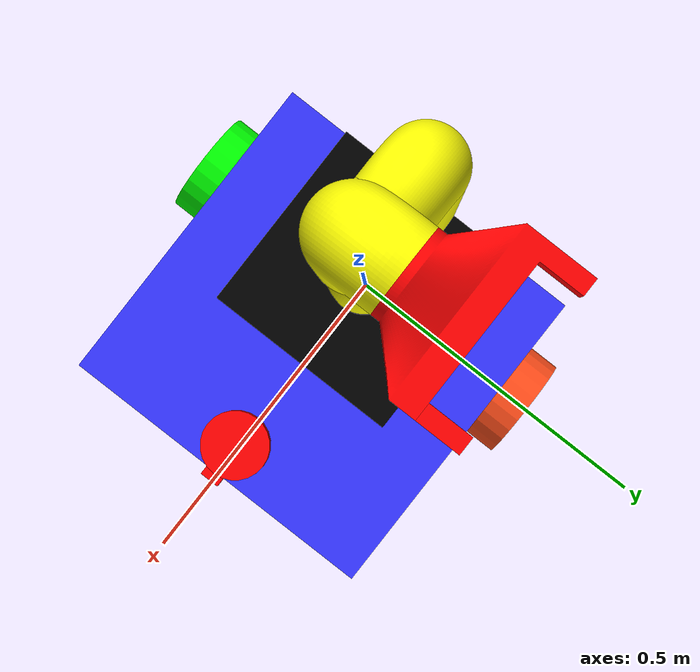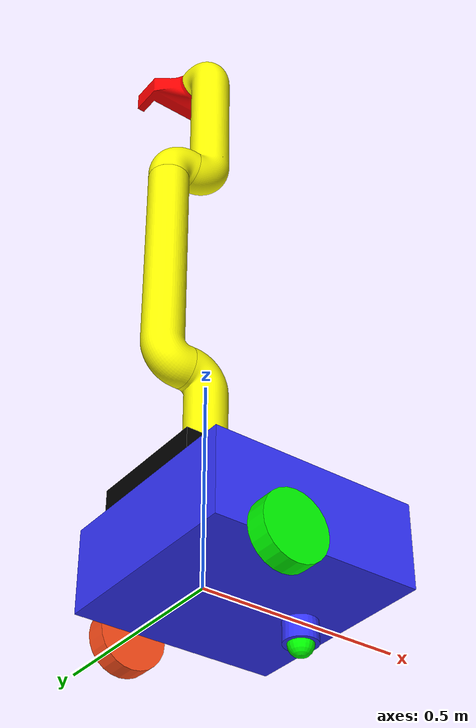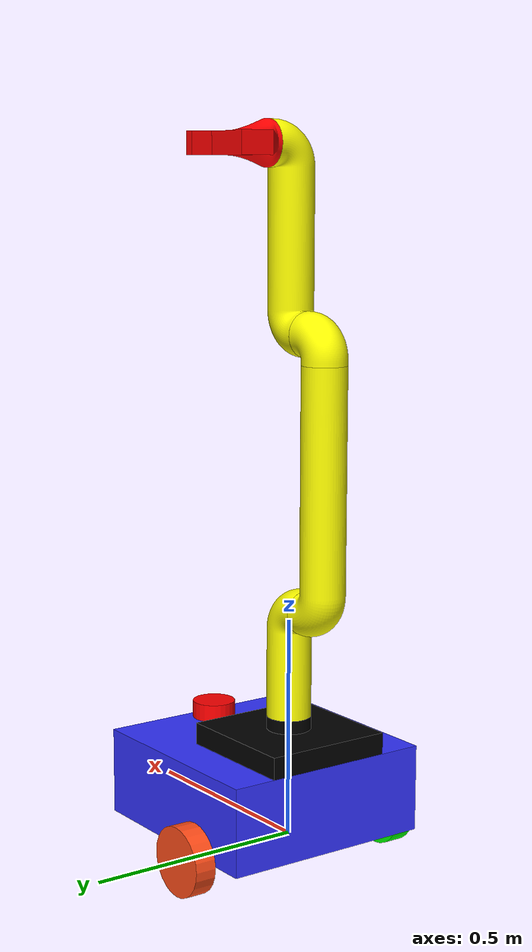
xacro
<?xml version="1.0"?>

<robot xmlns:xacro="http://www.ros.org/wiki/xacro" name="spatial_manipulator">
    <xacro:arg name="use_ros2_control" default="true" />

    <xacro:include filename="robot_core.xacro" />

    <xacro:if value="$(arg use_ros2_control)">
        <xacro:include filename="ros2_control.xacro" />
    </xacro:if>
    <xacro:unless value="$(arg use_ros2_control)">
        <xacro:include filename="gazebo_control.xacro"/>
    </xacro:unless>

    <xacro:include filename="arm.xacro" />

    <xacro:include filename="lidar.xacro" />
    <xacro:include filename="depth_camera.xacro" />
    <xacro:include filename="imu.xacro" />
</robot>

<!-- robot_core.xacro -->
<robot xmlns:xacro="http://www.ros.org/wiki/xacro">
    <xacro:include filename="material.xacro" />
    <xacro:include filename="inertial_macros.xacro" />

    <link name="base_link">
    </link>

    <joint name="base_footprint_joint" type="fixed">
        <origin xyz="0.0 0.0 0.0" rpy="0.0 0.0 0.0"/>
        <parent link="base_link"/>
        <child link="base_footprint"/>
    </joint>

    <link name="base_footprint">
    </link>
    <!--          CHASSIS           -->
    <joint name="chassis_joint" type="fixed">
        <origin xyz="-0.15 0.0 0.0" rpy="0.0 0.0 0.0" />
        <parent link="base_link" />
        <child link="chassis_link" />
    </joint>

    <link name="chassis_link">
        <visual>
            <origin xyz="0.25 0.0 0.1" rpy="0.0 0.0 0.0" />
            <geometry>
                <box size="0.5 0.5 0.2" />
            </geometry>
            <material name="blue" />
        </visual>
        <collision>
            <origin xyz="0.25 0.0 0.1" rpy="0.0 0.0 0.0" />
            <geometry>
                <box size="0.5 0.5 0.2" />
            </geometry>
        </collision>

        <xacro:inertial_box mass="5" x="0.5" y="0.5" z="0.2">
            <origin xyz="0.25 0 0.1" rpy="0 0 0" />
        </xacro:inertial_box>
    </link>
    <gazebo reference="chassis_link">
        <material>Gazebo/Blue</material>
    </gazebo>
    <!--          LEFT WHEEL           -->

    <joint name="left_wheel_joint" type="continuous">
        <origin xyz="0.0 0.28 0.0" rpy="-${pi/2} 0.0 0.0" />
        <parent link="base_link" />
        <child link="left_wheel_link" />
        <axis xyz="0.0 0.0 1" />
    </joint>

    <link name="left_wheel_link">
        <visual>
            <geometry>
                <cylinder radius="0.08" length="0.05" />
            </geometry>
            <material name="orange" />
        </visual>
        <collision>
            <geometry>
                <sphere radius="0.08" />
            </geometry>
        </collision>

        <xacro:inertial_cylinder mass="0.9" length="0.05" radius="0.08">
            <origin xyz="0 0 0" rpy="0 0 0" />
        </xacro:inertial_cylinder>
    </link>

    <gazebo reference="left_wheel_link">
        <material>Gazebo/Orange</material>
    </gazebo>
    <!--          RIGHT WHEEL           -->

    <joint name="right_wheel_joint" type="continuous">
        <parent link="base_link" />
        <child link="right_wheel_link" />
        <origin xyz="0.0 -0.28 0.0" rpy="${pi/2} 0.0 0.0" />
        <axis xyz="0.0 0.0 -1" />
    </joint>

    <link name="right_wheel_link">
        <visual>
            <geometry>
                <cylinder radius="0.08" length="0.05" />
            </geometry>
            <material name="green" />
        </visual>
        <collision>
            <geometry>
                <sphere radius="0.08" />
            </geometry>
        </collision>

        <xacro:inertial_cylinder mass="0.9" length="0.05" radius="0.08">
            <origin xyz="0 0 0" rpy="0 0 0" />
        </xacro:inertial_cylinder>
    </link>

    <gazebo reference="right_wheel_link">
        <material>Gazebo/Green</material>
    </gazebo>
    <!--          CASTER WHEEL           -->

    <joint name="caster_base_joint" type="fixed">
        <origin xyz="0.25 0.0 -0.025" rpy="0.0 0.0 0.0" />
        <parent link="base_link" />
        <child link="caster_base_link" />
    </joint>

    <link name="caster_base_link">
        <visual>
            <geometry>
                <cylinder radius="0.04" length="0.05" />
            </geometry>
            <material name="blue" />
        </visual>
        <collision>
            <geometry>
                <cylinder radius="0.04" length="0.05" />
            </geometry>
        </collision>

        <xacro:inertial_cylinder mass="0.5" length="0.05" radius="0.04">
            <origin xyz="0 0 0" rpy="0 0 0" />
        </xacro:inertial_cylinder>
    </link>
    <gazebo reference="caster_base_link">
        <material>Gazebo/Blue</material>
    </gazebo>

    <joint name="caster_joint" type="fixed">
        <origin xyz="0.0 0.0 -0.025" rpy="0.0 0.0 0.0" />
        <parent link="caster_base_link" />
        <child link="caster_wheel_link" />
    </joint>

    <link name="caster_wheel_link">
        <visual>
            <geometry>
                <sphere radius="0.03" />
            </geometry>
            <material name="green" />
        </visual>
        <collision>
            <geometry>
                <sphere radius="0.03" />
            </geometry>
        </collision>
        <xacro:inertial_sphere mass="0.8" radius="0.03">
            <origin xyz="0 0 0" rpy="0 0 0" />
        </xacro:inertial_sphere>
    </link>

    <gazebo reference="caster_wheel_link">
        <material>Gazebo/Green</material>
        <mu1 value="0.01" />
        <mu2 value="0.01" />
    </gazebo>

</robot>

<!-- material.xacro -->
<robot xmlns:xacro="http://www.ros.org/wiki/xacro">

    <material name="white">
        <color rgba="1 1 1 1" />
    </material>

    <material name="orange">
        <color rgba="1 0.3 0.1 1" />
    </material>

    <material name="blue">
        <color rgba="0.2 0.2 1 1" />
    </material>
    <material name="green">
        <color rgba="0.0 1 0 1" />
    </material>
    <material name="red">
        <color rgba="1.0 0 0 1" />
    </material>

    <material name="black">
        <color rgba="0 0 0 1" />
    </material>

    <material name="silver">
        <color rgba="0.700 0.700 0.700 1.000" />
    </material>

    <material name="yellow">
        <color rgba="1 1 0 1.000" />
    </material>

</robot>

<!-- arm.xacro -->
<robot xmlns:xacro="http://www.ros.org/wiki/xacro">

<xacro:include filename="$(find spatial_manipulator)/description/arm.trans" />
<xacro:include filename="$(find spatial_manipulator)/description/arm.gazebo" />

<joint name="arm_joint" type="fixed">
    <parent link="chassis_link"/>
    <child link="arm_base_link"/>
    <origin xyz="0.15 0.0 0.2" rpy="0.0 0.0 ${pi}"/>
</joint>

<link name="arm_base_link">
  <inertial>
    <origin xyz="-3.0728641490355835e-17 0.0 0.026990189047542933" rpy="0 0 0"/>
    <mass value="0.639308626"/>
    <inertia ixx="0.095069" iyy="0.095069" izz="0.183045" ixy="-0.0" iyz="0.0" ixz="-0.0"/>
  </inertial>
  <visual>
    <origin xyz="0 0 0" rpy="0 0 0"/>
    <geometry>
      <mesh filename="file://$(find spatial_manipulator)/meshes/arm_base_link.stl" scale="0.001 0.001 0.001"/>
    </geometry>
    <material name="black"/>
  </visual>
  <collision>
    <origin xyz="0 0 0" rpy="0 0 0"/>
    <geometry>
      <mesh filename="file://$(find spatial_manipulator)/meshes/arm_base_link.stl" scale="0.001 0.001 0.001"/>
    </geometry>
  </collision>
</link>

<link name="first_link_1">
  <inertial>
    <origin xyz="0.0046856299908202255 0.0 0.14324873354490847" rpy="0 0 0"/>
    <mass value="0.305935166"/>
    <inertia ixx="0.044972" iyy="0.045488" izz="0.008164" ixy="0.0" iyz="0.0" ixz="-0.003204"/>
  </inertial>
  <visual>
    <origin xyz="-0.0 -0.0 -0.08" rpy="0 0 0"/>
    <geometry>
      <mesh filename="file://$(find spatial_manipulator)/meshes/first_link_1.stl" scale="0.001 0.001 0.001"/>
    </geometry>
    <material name="yellow"/>
  </visual>
  <collision>
    <origin xyz="-0.0 -0.0 -0.08" rpy="0 0 0"/>
    <geometry>
      <mesh filename="file://$(find spatial_manipulator)/meshes/first_link_1.stl" scale="0.001 0.001 0.001"/>
    </geometry>
  </collision>
</link>

<link name="second_link_1">
  <inertial>
    <origin xyz="0.05770282693838659 -7.870356960513597e-18 0.25623073545187974" rpy="0 0 0"/>
    <mass value="0.624021428"/>
    <inertia ixx="0.364873" iyy="0.365457" izz="0.016185" ixy="0.0" iyz="0.0" ixz="-0.00749"/>
  </inertial>
  <visual>
    <origin xyz="-0.06 -0.0 -0.33" rpy="0 0 0"/>
    <geometry>
      <mesh filename="file://$(find spatial_manipulator)/meshes/second_link_1.stl" scale="0.001 0.001 0.001"/>
    </geometry>
    <material name="yellow"/>
  </visual>
  <collision>
    <origin xyz="-0.06 -0.0 -0.33" rpy="0 0 0"/>
    <geometry>
      <mesh filename="file://$(find spatial_manipulator)/meshes/second_link_1.stl" scale="0.001 0.001 0.001"/>
    </geometry>
  </collision>
</link>

<link name="third_link_1">
  <inertial>
    <origin xyz="-0.01372020432066895 4.67375539046592e-09 0.04627975967090037" rpy="0 0 0"/>
    <mass value="0.104480557"/>
    <inertia ixx="0.002869" iyy="0.003125" izz="0.002869" ixy="0.0" iyz="-0.0" ixz="0.000537"/>
  </inertial>
  <visual>
    <origin xyz="-0.12 -0.0 -0.88" rpy="0 0 0"/>
    <geometry>
      <mesh filename="file://$(find spatial_manipulator)/meshes/third_link_1.stl" scale="0.001 0.001 0.001"/>
    </geometry>
    <material name="yellow"/>
  </visual>
  <collision>
    <origin xyz="-0.12 -0.0 -0.88" rpy="0 0 0"/>
    <geometry>
      <mesh filename="file://$(find spatial_manipulator)/meshes/third_link_1.stl" scale="0.001 0.001 0.001"/>
    </geometry>
  </collision>
</link>

<link name="fourth_link_1">
  <inertial>
    <origin xyz="-0.057166086937035156 -0.002833849284401173 0.20000001558393898" rpy="0 0 0"/>
    <mass value="0.505841581"/>
    <inertia ixx="0.193829" iyy="0.193829" izz="0.013784" ixy="-8.1e-05" iyz="0.005878" ixz="0.005878"/>
  </inertial>
  <visual>
    <origin xyz="-0.06 -0.0 -0.94" rpy="0 0 0"/>
    <geometry>
      <mesh filename="file://$(find spatial_manipulator)/meshes/fourth_link_1.stl" scale="0.001 0.001 0.001"/>
    </geometry>
    <material name="yellow"/>
  </visual>
  <collision>
    <origin xyz="-0.06 -0.0 -0.94" rpy="0 0 0"/>
    <geometry>
      <mesh filename="file://$(find spatial_manipulator)/meshes/fourth_link_1.stl" scale="0.001 0.001 0.001"/>
    </geometry>
  </collision>
</link>

<link name="fifth_link_1">
  <inertial>
    <origin xyz="0.005039788511788848 -0.05078102194423177 1.5583935253360437e-08" rpy="0 0 0"/>
    <mass value="0.120541343"/>
    <inertia ixx="0.002894" iyy="0.006872" izz="0.008175" ixy="0.00078" iyz="0.0" ixz="2e-05"/>
  </inertial>
  <visual>
    <origin xyz="-0.0 0.06 -1.34" rpy="0 0 0"/>
    <geometry>
      <mesh filename="file://$(find spatial_manipulator)/meshes/fifth_link_1.stl" scale="0.001 0.001 0.001"/>
    </geometry>
    <material name="red"/>
  </visual>
  <collision>
    <origin xyz="-0.0 0.06 -1.34" rpy="0 0 0"/>
    <geometry>
      <mesh filename="file://$(find spatial_manipulator)/meshes/fifth_link_1.stl" scale="0.001 0.001 0.001"/>
    </geometry>
  </collision>
</link>

<link name="gripper_link_1">
  <inertial>
    <origin xyz="0.010000023866328533 -0.024999959122409626 -0.024999984416064658" rpy="0 0 0"/>
    <mass value="0.00675"/>
    <inertia ixx="5.6e-05" iyy="3.3e-05" izz="3.3e-05" ixy="-0.0" iyz="0.0" ixz="0.0"/>
  </inertial>
  <visual>
    <origin xyz="0.1 0.15 -1.365" rpy="0 0 0"/>
    <geometry>
      <mesh filename="file://$(find spatial_manipulator)/meshes/gripper_link_1.stl" scale="0.001 0.001 0.001"/>
    </geometry>
    <material name="red"/>
  </visual>
  <collision>
    <origin xyz="0.1 0.15 -1.365" rpy="0 0 0"/>
    <geometry>
      <mesh filename="file://$(find spatial_manipulator)/meshes/gripper_link_1.stl" scale="0.001 0.001 0.001"/>
    </geometry>
  </collision>
</link>

<joint name="first_joint" type="revolute">
  <origin xyz="0.0 0.0 0.08" rpy="0 0 0"/>
  <parent link="arm_base_link"/>
  <child link="first_link_1"/>
  <axis xyz="0.0 0.0 1.0"/>
  <limit upper="3.141593" lower="-3.141593" effort="100" velocity="100.0"/>
</joint>

<joint name="second_joint" type="revolute">
  <origin xyz="0.06 0.0 0.25" rpy="0 0 0"/>
  <parent link="first_link_1"/>
  <child link="second_link_1"/>
  <axis xyz="1.0 0.0 0.0"/>
  <limit upper="2.094395" lower="0.0" effort="100" velocity="100.0"/>
</joint>

<joint name="third_joint" type="revolute">
  <origin xyz="0.06 0.0 0.55" rpy="0 0 0"/>
  <parent link="second_link_1"/>
  <child link="third_link_1"/>
  <axis xyz="0.0 0.0 1.0"/>
  <limit upper="3.141593" lower="-3.141593" effort="100" velocity="100"/>
</joint>

<joint name="fourth_joint" type="revolute">
  <origin xyz="-0.06 0.0 0.06" rpy="0 0 0"/>
  <parent link="third_link_1"/>
  <child link="fourth_link_1"/>
  <axis xyz="-1.0 0.0 0.0"/>
  <limit upper="2.094395" lower="-2.094395" effort="100" velocity="100"/>
</joint>

<joint name="fifth_joint" type="revolute">
  <origin xyz="-0.06 -0.06 0.4" rpy="0 0 0"/>
  <parent link="fourth_link_1"/>
  <child link="fifth_link_1"/>
  <axis xyz="-0.0 -1.0 0.0"/>
  <limit upper="3.141593" lower="-3.141593" effort="100" velocity="100"/>
</joint>

<joint name="gripper_joint" type="prismatic">
  <origin xyz="-0.1 -0.09 0.025" rpy="0 0 0"/>
  <parent link="fifth_link_1"/>
  <child link="gripper_link_1"/>
  <axis xyz="-1.0 0.0 0.0"/>
  <limit upper="0.0" lower="-0.15" effort="100" velocity="100"/>
</joint>

</robot>

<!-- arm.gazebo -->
<robot xmlns:xacro="http://www.ros.org/wiki/xacro" >

<xacro:property name="silver" value="Gazebo/Silver" />
<xacro:property name="red" value="Gazebo/Red" />
<xacro:property name="yellow" value="Gazebo/Yellow" />
<xacro:property name="black" value="Gazebo/Black" />

<gazebo>
  <plugin name="control" filename="libgazebo_ros_control.so"/>
</gazebo>
<gazebo reference="arm_base_link">
  <material>${black}</material>
  <mu1>0.2</mu1>
  <mu2>0.2</mu2>
  <self_collide>true</self_collide>
  <gravity>true</gravity>
</gazebo>

<gazebo reference="first_link_1">
  <material>${yellow}</material>
  <mu1>0.2</mu1>
  <mu2>0.2</mu2>
  <self_collide>true</self_collide>
</gazebo>

<gazebo reference="second_link_1">
  <material>${yellow}</material>
  <mu1>0.2</mu1>
  <mu2>0.2</mu2>
  <self_collide>true</self_collide>
</gazebo>

<gazebo reference="third_link_1">
  <material>${yellow}</material>
  <mu1>0.2</mu1>
  <mu2>0.2</mu2>
  <self_collide>true</self_collide>
</gazebo>

<gazebo reference="fourth_link_1">
  <material>${yellow}</material>
  <mu1>0.2</mu1>
  <mu2>0.2</mu2>
  <self_collide>true</self_collide>
</gazebo>

<gazebo reference="fifth_link_1">
  <material>${red}</material>
  <mu1>0.2</mu1>
  <mu2>0.2</mu2>
  <self_collide>true</self_collide>
</gazebo>

<gazebo reference="gripper_link_1">
  <material>${red}</material>
  <mu1>0.2</mu1>
  <mu2>0.2</mu2>
  <self_collide>true</self_collide>
</gazebo>

</robot>

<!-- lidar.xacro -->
<robot xmlns:xacro="http://www.ros.org/wiki/xacro">
    <joint name="laser_joint" type="fixed">
        <origin xyz="0.45 0 0.22" rpy="0.0 0.0 0.0" />
        <parent link="chassis_link" />
        <child link="laser_frame" />
    </joint>

    <link name="laser_frame">
        <visual>
            <geometry>
                <cylinder radius="0.05" length="0.04" />
            </geometry>
            <material name="red" />
        </visual>
        <collision>
            <geometry>
                <cylinder radius="0.05" length="0.04" />
            </geometry>
        </collision>
        <xacro:inertial_cylinder mass="0.2" length="0.04" radius="0.05">
            <origin xyz="0.0 0.0 0.0" rpy="0.0 0.0 0.0" />
        </xacro:inertial_cylinder>
    </link>

    <gazebo reference="laser_frame">
        <material>Gazebo/Red</material>
        <sensor name="laser" type="ray">
            <pose>0 0 0 0 0 0</pose>
            <visualize>true</visualize>
            <update_rate>10</update_rate>
            <ray>
                <scan>
                    <horizontal>
                        <samples>360</samples>
                        <min_angle>-2.094395102</min_angle>
                        <max_angle>2.094395102</max_angle>
                    </horizontal>
                </scan>
                <range>
                    <min>0.3</min>
                    <max>12</max>
                </range>
            </ray>
            <plugin name="laser_controller" filename="libgazebo_ros_ray_sensor.so">
                <ros>
                    <argument>~/out:=scan</argument>
                </ros>
                <output_type>sensor_msgs/LaserScan</output_type>
                <frame_name>laser_frame</frame_name>
            </plugin>
        </sensor>
    </gazebo>

</robot>

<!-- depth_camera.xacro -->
<robot xmlns:xacro="http://www.ros.org/wiki/xacro">
    <joint name="camera_joint" type="fixed">
        <parent link="chassis_link" />
        <child link="camera_link" />
        <origin xyz="0.505 0.0 0.18" rpy="0.0 0.0 0.0" />
    </joint>

    <link name="camera_link">
        <visual>
            <geometry>
                <box size="0.02 0.03 0.03" />
            </geometry>
            <material name="red" />
        </visual>
        <collision>
            <geometry>
                <box size="0.02 0.03 0.03" />
            </geometry>
        </collision>
    </link>

    <gazebo reference="camera_link">
        <material>Gazebo/Red</material>
        <sensor name="camera" type="depth">
            <pose>0 0 0 0 0 0</pose>
            <visualize>true</visualize>
            <update_rate>10</update_rate>
            <camera>
                <horizontal_fov>1.089</horizontal_fov>
                <image>
                    <format>B8G8R8</format>
                    <width>640</width>
                    <height>480</height>
                </image>
                <clip>
                    <near>0.05</near>
                    <far>8.0</far>
                </clip>
            </camera>
            <plugin name="camera_controller" filename="libgazebo_ros_camera.so">
                <frame_name>camera_link_optical</frame_name>
                <min_depth>0.1</min_depth>
                <max_depth>100</max_depth>
            </plugin>
        </sensor>
    </gazebo>

    <joint name="camera_optical_joint" type="fixed">
        <origin xyz="0.0 0.0 0.0" rpy="-${pi/2} 0.0 -${pi/2}" />
        <parent link="camera_link" />
        <child link="camera_link_optical" />
    </joint>
    <link name="camera_link_optical">
    </link>
</robot>

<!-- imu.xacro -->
<robot xmlns:xacro="http://www.ros.org/wiki/xacro">
    <joint name="imu_joint" type="fixed">
        <origin xyz="0.15 0.0 0.1" rpy="0.0 0.0 0.0" />
        <parent link="chassis_link" />
        <child link="imu_link" />
    </joint>

    <link name="imu_link">
        <visual>
            <geometry>
                <box size="0.05 0.05 0.01" />
            </geometry>
            <material name="red" />
        </visual>
    </link>
    <gazebo reference="imu_link">
        <material>Gazebo/Red</material>
        <pose>0 0 0 0 0 0</pose>
        <visualize>true</visualize>
        <gravity>true</gravity>
        <topic>__default_topic__</topic>
        <sensor name="imu_sensor" type="imu">
            <always_on>true</always_on>
            <update_rate>100</update_rate>
            <plugin name="imu_plugin" filename="libgazebo_ros_imu_sensor.so">
                <frame_name>imu_link</frame_name>
                <initial_orientation_as_reference>false</initial_orientation_as_reference>
            </plugin>
        </sensor>
    </gazebo>
</robot>
